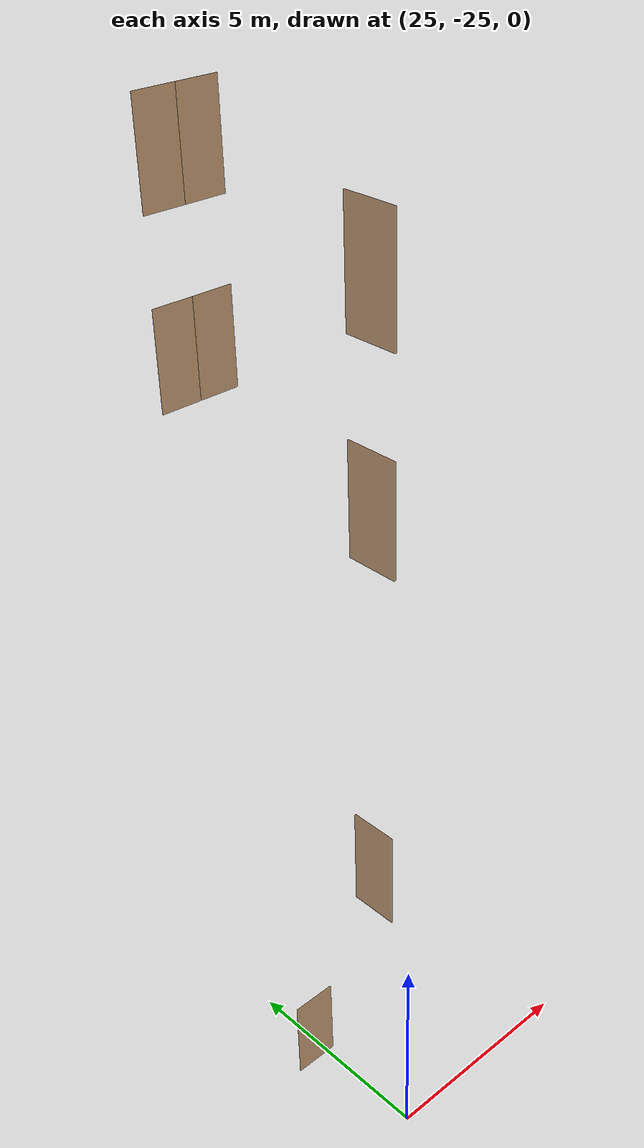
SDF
<sdf version="1.7">
 <world name="sim_world">
  <model name="Snull12">
   <pose>24.6549303662771 -22.17731396781539 0.0 0 0 3.141592653589793</pose>
   <link name="right">
    <pose>0 0 1.11 0 0 0</pose>
    <visual name="right_visual">
     <geometry><box><size>1.063964828435951 0.03 2.2</size></box></geometry>
     <material>
      <ambient>0.5 0.25 0 0.6</ambient>
      <diffuse>0.5 0.25 0 0.6</diffuse>
      <pbr><metal><metalness>0.0</metalness></metal></pbr>
     </material>
    </visual>
    <collision name="right_collision">
     <geometry><box><size>1.063964828435951 0.03 2.2</size></box></geometry>
     <surface><contact><collide_bitmask>0x02</collide_bitmask></contact></surface>
    </collision>
    <inertial>
     <mass>50.0</mass>
     <inertia><ixx>20.17041666666667</ixx><iyy>24.8834214839531</iyy><izz>4.720504817286428</izz></inertia>
    </inertial>
   </link>
   <joint name="right_joint" type="revolute">
    <parent>world</parent>
    <child>right</child>
    <axis><xyz>0 0 -1</xyz><limit><lower>0</lower><upper>1.57</upper></limit></axis>
    <pose>0.5369824142179755 0 0 0 0 0</pose>
   </joint>
   <plugin name="register_component" filename="libregister_component.so">
    <component name="Door">
     <v_max_door>0.5</v_max_door>
     <a_max_door>0.3</a_max_door>
     <a_nom_door>0.15</a_nom_door>
     <dx_min_door>0.01</dx_min_door>
     <f_max_door>500.0</f_max_door>
     <ros_interface>true</ros_interface>
     <door name="Snull12" type="SwingDoor" left_joint_name="empty_joint" right_joint_name="right_joint"/>
    </component>
   </plugin>
  </model>
  <model name="1null88">
   <pose>23.79315237277376 -25.21506179292833 8.0 0 0 1.5778899623800977</pose>
   <link name="right">
    <pose>0 0 1.11 0 0 0</pose>
    <visual name="right_visual">
     <geometry><box><size>1.0111211621378167 0.03 2.2</size></box></geometry>
     <material>
      <ambient>0.5 0.25 0 0.6</ambient>
      <diffuse>0.5 0.25 0 0.6</diffuse>
      <pbr><metal><metalness>0.0</metalness></metal></pbr>
     </material>
    </visual>
    <collision name="right_collision">
     <geometry><box><size>1.0111211621378167 0.03 2.2</size></box></geometry>
     <surface><contact><collide_bitmask>0x02</collide_bitmask></contact></surface>
    </collision>
    <inertial>
     <mass>50.0</mass>
     <inertia><ixx>20.17041666666667</ixx><iyy>24.426525018845542</iyy><izz>4.263608352178871</izz></inertia>
    </inertial>
   </link>
   <joint name="right_joint" type="revolute">
    <parent>world</parent>
    <child>right</child>
    <axis><xyz>0 0 -1</xyz><limit><lower>0</lower><upper>1.57</upper></limit></axis>
    <pose>0.5105605810689083 0 0 0 0 0</pose>
   </joint>
   <plugin name="register_component" filename="libregister_component.so">
    <component name="Door">
     <v_max_door>0.5</v_max_door>
     <a_max_door>0.3</a_max_door>
     <a_nom_door>0.15</a_nom_door>
     <dx_min_door>0.01</dx_min_door>
     <f_max_door>500.0</f_max_door>
     <ros_interface>true</ros_interface>
     <door name="1null88" type="SwingDoor" left_joint_name="empty_joint" right_joint_name="right_joint"/>
    </component>
   </plugin>
  </model>
  <model name="wx12null">
   <pose>23.80150799700486 -25.24748232190742 16.0 0 0 1.5707543773119685</pose>
   <link name="right">
    <pose>0 0 1.11 0 0 0</pose>
    <visual name="right_visual">
     <geometry><box><size>1.0802625972102338 0.03 2.2</size></box></geometry>
     <material>
      <ambient>0.5 0.25 0 0.6</ambient>
      <diffuse>0.5 0.25 0 0.6</diffuse>
      <pbr><metal><metalness>0.0</metalness></metal></pbr>
     </material>
    </visual>
    <collision name="right_collision">
     <geometry><box><size>1.0802625972102338 0.03 2.2</size></box></geometry>
     <surface><contact><collide_bitmask>0x02</collide_bitmask></contact></surface>
    </collision>
    <inertial>
     <mass>50.0</mass>
     <inertia><ixx>20.17041666666667</ixx><iyy>25.029030328880836</iyy><izz>4.866113662214166</izz></inertia>
    </inertial>
   </link>
   <joint name="right_joint" type="revolute">
    <parent>world</parent>
    <child>right</child>
    <axis><xyz>0 0 -1</xyz><limit><lower>0</lower><upper>1.57</upper></limit></axis>
    <pose>0.5451312986051169 0 0 0 0 0</pose>
   </joint>
   <plugin name="register_component" filename="libregister_component.so">
    <component name="Door">
     <v_max_door>0.5</v_max_door>
     <a_max_door>0.3</a_max_door>
     <a_nom_door>0.15</a_nom_door>
     <dx_min_door>0.01</dx_min_door>
     <f_max_door>500.0</f_max_door>
     <ros_interface>true</ros_interface>
     <door name="wx12null" type="SwingDoor" left_joint_name="empty_joint" right_joint_name="right_joint"/>
    </component>
   </plugin>
  </model>
  <model name="wx5null">
   <pose>25.82173818402945 -18.0949187951867 16.0 0 0 -4.194948292701798e-05</pose>
   <link name="right">
    <pose>0.48303710250725795 0 1.11 0 0 0</pose>
    <visual name="right_visual">
     <geometry><box><size>0.9560742050145159 0.03 2.2</size></box></geometry>
     <material>
      <ambient>0.5 0.25 0 0.6</ambient>
      <diffuse>0.5 0.25 0 0.6</diffuse>
      <pbr><metal><metalness>0.0</metalness></metal></pbr>
     </material>
    </visual>
    <collision name="right_collision">
     <geometry><box><size>0.9560742050145159 0.03 2.2</size></box></geometry>
     <surface><contact><collide_bitmask>0x02</collide_bitmask></contact></surface>
    </collision>
    <inertial>
     <mass>50.0</mass>
     <inertia><ixx>20.17041666666667</ixx><iyy>23.975324522892247</iyy><izz>3.812407856225578</izz></inertia>
    </inertial>
   </link>
   <joint name="right_joint" type="revolute">
    <parent>world</parent>
    <child>right</child>
    <axis><xyz>0 0 -1</xyz><limit><lower>0</lower><upper>1.57</upper></limit></axis>
    <pose>0.48303710250725795 0 0 0 0 0</pose>
   </joint>
   <link name="left">
    <pose>-0.48303710250725795 0 1.11 0 0 0</pose>
    <visual name="left_visual">
     <geometry><box><size>0.9560742050145159 0.03 2.2</size></box></geometry>
     <material>
      <ambient>0.5 0.25 0 0.6</ambient>
      <diffuse>0.5 0.25 0 0.6</diffuse>
      <pbr><metal><metalness>0.0</metalness></metal></pbr>
     </material>
    </visual>
    <collision name="left_collision">
     <geometry><box><size>0.9560742050145159 0.03 2.2</size></box></geometry>
     <surface><contact><collide_bitmask>0x02</collide_bitmask></contact></surface>
    </collision>
    <inertial>
     <mass>50.0</mass>
     <inertia><ixx>20.17041666666667</ixx><iyy>23.975324522892247</iyy><izz>3.812407856225578</izz></inertia>
    </inertial>
   </link>
   <joint name="left_joint" type="revolute">
    <parent>world</parent>
    <child>left</child>
    <axis><xyz>0 0 -1</xyz><limit><lower>-1.57</lower><upper>0</upper></limit></axis>
    <pose>-0.48303710250725795 0 0 0 0 0</pose>
   </joint>
   <plugin name="register_component" filename="libregister_component.so">
    <component name="Door">
     <v_max_door>0.5</v_max_door>
     <a_max_door>0.3</a_max_door>
     <a_nom_door>0.15</a_nom_door>
     <dx_min_door>0.01</dx_min_door>
     <f_max_door>500.0</f_max_door>
     <ros_interface>true</ros_interface>
     <door name="wx5null" type="DoubleSwingDoor" left_joint_name="left_joint" right_joint_name="right_joint"/>
    </component>
   </plugin>
  </model>
  <model name="x12null">
   <pose>23.81718840449971 -25.248978273556116 20.0 0 0 1.5705660181854284</pose>
   <link name="right">
    <pose>0 0 1.11 0 0 0</pose>
    <visual name="right_visual">
     <geometry><box><size>1.0802518079606191 0.03 2.2</size></box></geometry>
     <material>
      <ambient>0.5 0.25 0 0.6</ambient>
      <diffuse>0.5 0.25 0 0.6</diffuse>
      <pbr><metal><metalness>0.0</metalness></metal></pbr>
     </material>
    </visual>
    <collision name="right_collision">
     <geometry><box><size>1.0802518079606191 0.03 2.2</size></box></geometry>
     <surface><contact><collide_bitmask>0x02</collide_bitmask></contact></surface>
    </collision>
    <inertial>
     <mass>50.0</mass>
     <inertia><ixx>20.17041666666667</ixx><iyy>25.028933202509112</iyy><izz>4.8660165358424425</izz></inertia>
    </inertial>
   </link>
   <joint name="right_joint" type="revolute">
    <parent>world</parent>
    <child>right</child>
    <axis><xyz>0 0 -1</xyz><limit><lower>0</lower><upper>1.57</upper></limit></axis>
    <pose>0.5451259039803096 0 0 0 0 0</pose>
   </joint>
   <plugin name="register_component" filename="libregister_component.so">
    <component name="Door">
     <v_max_door>0.5</v_max_door>
     <a_max_door>0.3</a_max_door>
     <a_nom_door>0.15</a_nom_door>
     <dx_min_door>0.01</dx_min_door>
     <f_max_door>500.0</f_max_door>
     <ros_interface>true</ros_interface>
     <door name="x12null" type="SwingDoor" left_joint_name="empty_joint" right_joint_name="right_joint"/>
    </component>
   </plugin>
  </model>
  <model name="x5null">
   <pose>25.83874580074646 -18.096866180583618 20.0 0 0 -0.00023030860947058167</pose>
   <link name="right">
    <pose>0.48303232236723753 0 1.11 0 0 0</pose>
    <visual name="right_visual">
     <geometry><box><size>0.956064644734475 0.03 2.2</size></box></geometry>
     <material>
      <ambient>0.5 0.25 0 0.6</ambient>
      <diffuse>0.5 0.25 0 0.6</diffuse>
      <pbr><metal><metalness>0.0</metalness></metal></pbr>
     </material>
    </visual>
    <collision name="right_collision">
     <geometry><box><size>0.956064644734475 0.03 2.2</size></box></geometry>
     <surface><contact><collide_bitmask>0x02</collide_bitmask></contact></surface>
    </collision>
    <inertial>
     <mass>50.0</mass>
     <inertia><ixx>20.17041666666667</ixx><iyy>23.975248353796914</iyy><izz>3.812331687130242</izz></inertia>
    </inertial>
   </link>
   <joint name="right_joint" type="revolute">
    <parent>world</parent>
    <child>right</child>
    <axis><xyz>0 0 -1</xyz><limit><lower>0</lower><upper>1.57</upper></limit></axis>
    <pose>0.48303232236723753 0 0 0 0 0</pose>
   </joint>
   <link name="left">
    <pose>-0.48303232236723753 0 1.11 0 0 0</pose>
    <visual name="left_visual">
     <geometry><box><size>0.956064644734475 0.03 2.2</size></box></geometry>
     <material>
      <ambient>0.5 0.25 0 0.6</ambient>
      <diffuse>0.5 0.25 0 0.6</diffuse>
      <pbr><metal><metalness>0.0</metalness></metal></pbr>
     </material>
    </visual>
    <collision name="left_collision">
     <geometry><box><size>0.956064644734475 0.03 2.2</size></box></geometry>
     <surface><contact><collide_bitmask>0x02</collide_bitmask></contact></surface>
    </collision>
    <inertial>
     <mass>50.0</mass>
     <inertia><ixx>20.17041666666667</ixx><iyy>23.975248353796914</iyy><izz>3.812331687130242</izz></inertia>
    </inertial>
   </link>
   <joint name="left_joint" type="revolute">
    <parent>world</parent>
    <child>left</child>
    <axis><xyz>0 0 -1</xyz><limit><lower>-1.57</lower><upper>0</upper></limit></axis>
    <pose>-0.48303232236723753 0 0 0 0 0</pose>
   </joint>
   <plugin name="register_component" filename="libregister_component.so">
    <component name="Door">
     <v_max_door>0.5</v_max_door>
     <a_max_door>0.3</a_max_door>
     <a_nom_door>0.15</a_nom_door>
     <dx_min_door>0.01</dx_min_door>
     <f_max_door>500.0</f_max_door>
     <ros_interface>true</ros_interface>
     <door name="x5null" type="DoubleSwingDoor" left_joint_name="left_joint" right_joint_name="right_joint"/>
    </component>
   </plugin>
  </model>
 </world>
</sdf>
